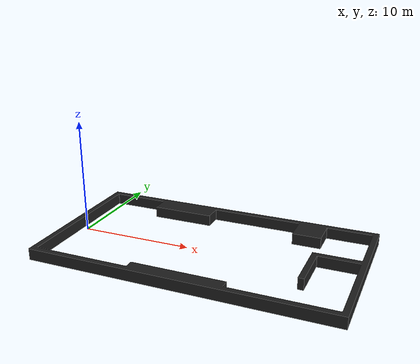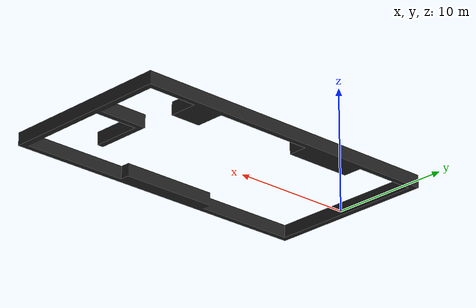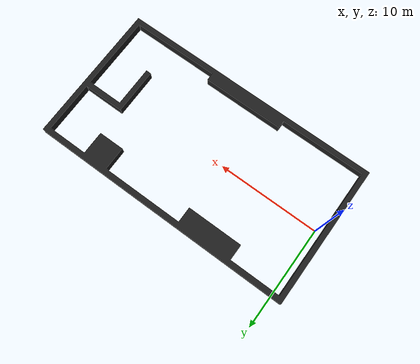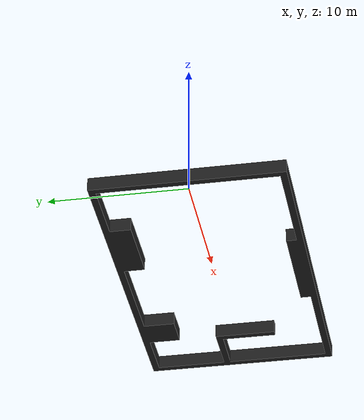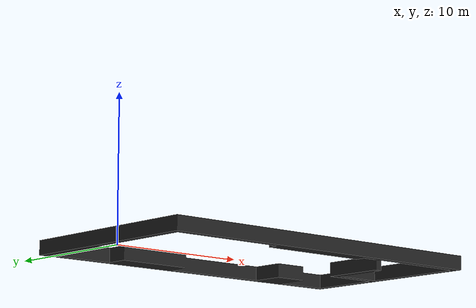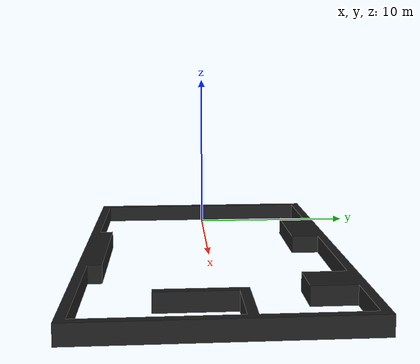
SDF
<?xml version='1.0'?>
<sdf version='1.6'>
    <model name="wall">
    <static>true</static>
    <link name="walllink">

    <collision name="collision">
        <pose>12 0 0 0 0 -1.5708</pose>
        <geometry>
          <mesh>
            <uri>model://turtlebot3_jp_world/meshes/wall.stl</uri>
            <scale>1 1 1</scale>
          </mesh>
        </geometry>
        <max_contacts>10</max_contacts>
        <surface>
          <bounce/>
          <friction>
            <ode/>
          </friction>
          <contact>
            <ode/>
          </contact>
        </surface>
      </collision>

      <visual name="visual">
        <pose>12 0 0 0 0 -1.5708</pose>
        <geometry>
          <mesh>
            <uri>model://turtlebot3_jp_world/meshes/wall.stl</uri>
            <scale>1 1 1</scale>
          </mesh>
        </geometry>
        <material>
          <script>
            <uri>file://media/materials/scripts/gazebo.material</uri>
            <name>Gazebo/FlatBlack</name>
          </script>
        </material>
      </visual>

    </link>
    </model>
</sdf>
